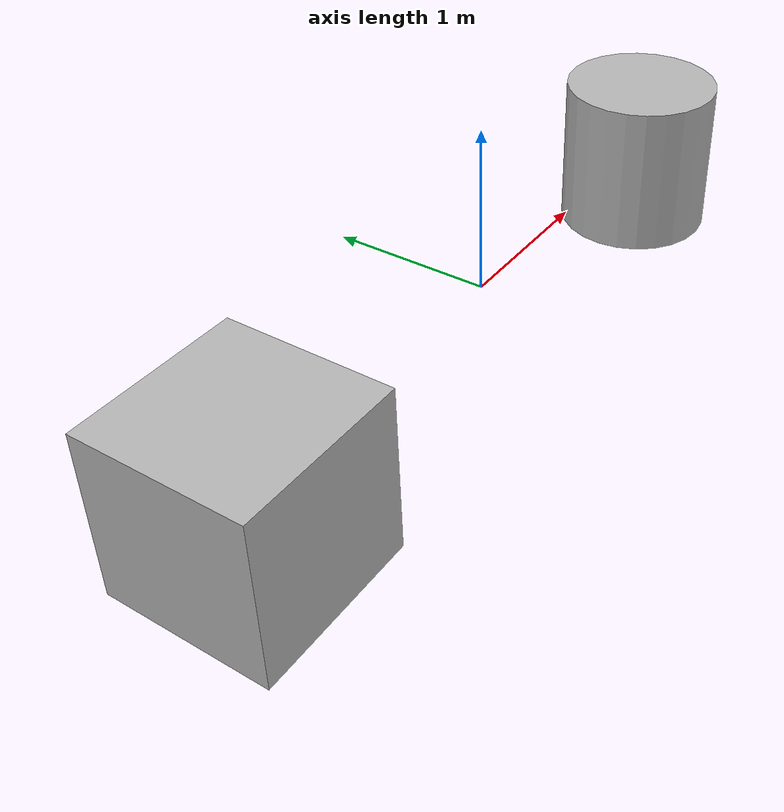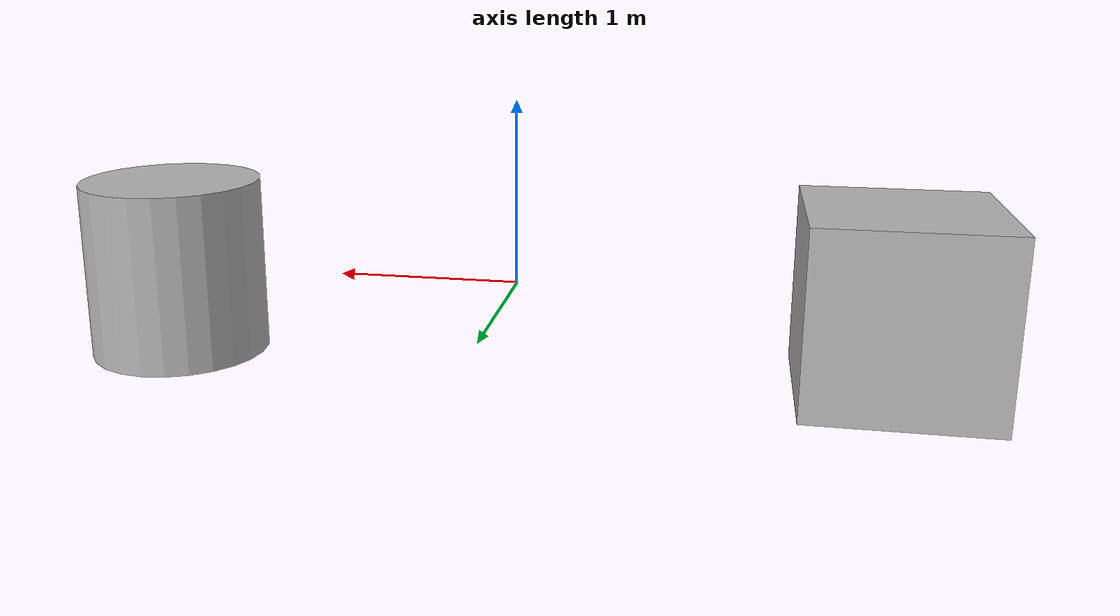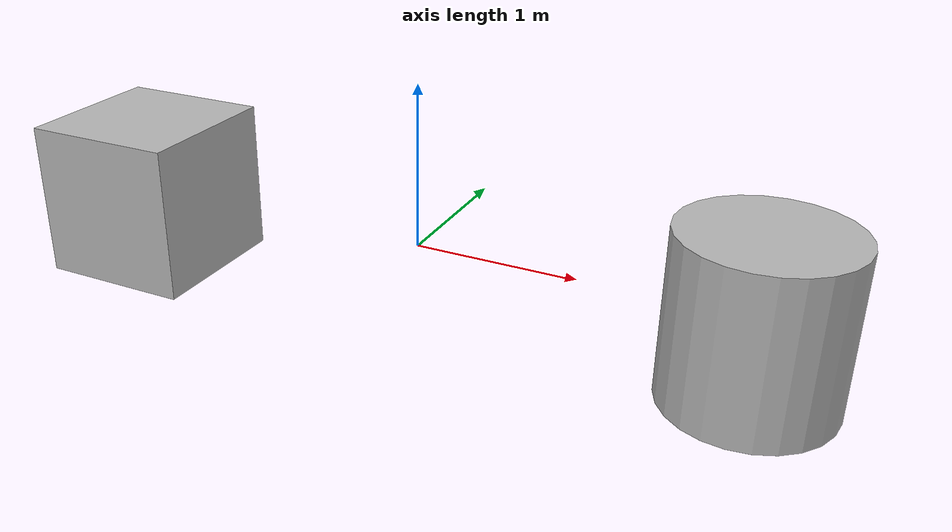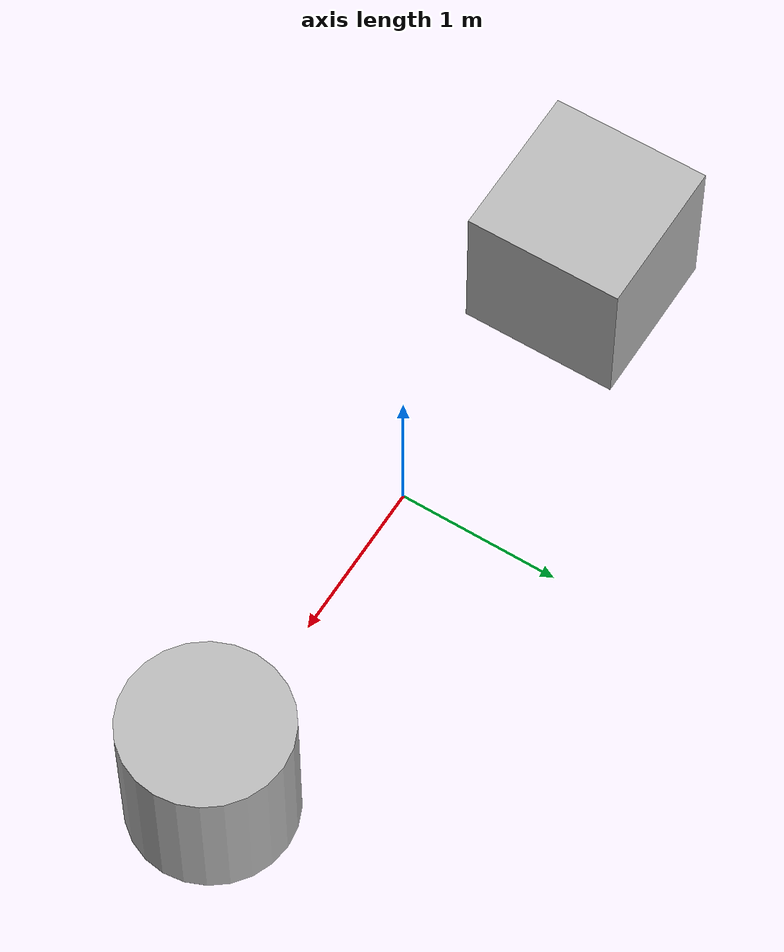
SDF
<?xml version="1.0" ?>
<sdf version="1.4">
    <world name="default">
        <include>
            <uri>model://sun</uri>
        </include>
        <physics type="rtql8">
            <gravity>0 0 -10.0</gravity>
        </physics>
        <model name="model_box1">
            <static>true</static>
            <pose>-2 0 0 0 0 0</pose>
            <link name="link_box1">
                <pose>0 0 0 0 0 0</pose>
                <inertial>
                    <inertia>
                        <ixx>1</ixx>
                        <ixy>0</ixy>
                        <ixz>0</ixz>
                        <iyy>1</iyy>
                        <iyz>0</iyz>
                        <izz>1</izz>
                    </inertia>
                    <mass>1.0</mass>
                </inertial>
                <visual name="visual_box1">
                    <pose>0 0 0 0 0 0</pose>
                    <geometry>
                        <box>
                            <size>1 1 1</size>
                        </box>
                    </geometry>
                </visual>
                <collision name="coll_box1">
                    <pose>0 0 0 0 0 0</pose>
                    <geometry>
                        <box>
                            <size>1 1 1</size>
                        </box>
                    </geometry>
                </collision>
            </link>
        </model>
        <model name="model_cylinder1">
            <static>true</static>
            <pose>2 0 0 0 0 0</pose>
            <link name="link_cylinder1">
                <pose>0 0 0 0 0 0</pose>
                <inertial>
                    <inertia>
                        <ixx>1</ixx>
                        <ixy>0</ixy>
                        <ixz>0</ixz>
                        <iyy>1</iyy>
                        <iyz>0</iyz>
                        <izz>1</izz>
                    </inertia>
                    <mass>1.0</mass>
                </inertial>
                <visual name="visual_cylinder1">
                    <pose>0 0 0 0 0 0</pose>
                    <geometry>
                        <cylinder>
                            <radius>0.5</radius>
                            <length>1</length>
                        </cylinder>
                    </geometry>
                </visual>
                <collision name="coll_cylinder1">
                    <pose>0 0 0 0 0 0</pose>
                    <geometry>
                        <cylinder>
                            <radius>0.5</radius>
                            <length>1</length>
                        </cylinder>
                    </geometry>
                </collision>
            </link>
        </model>
    </world>
</sdf>
